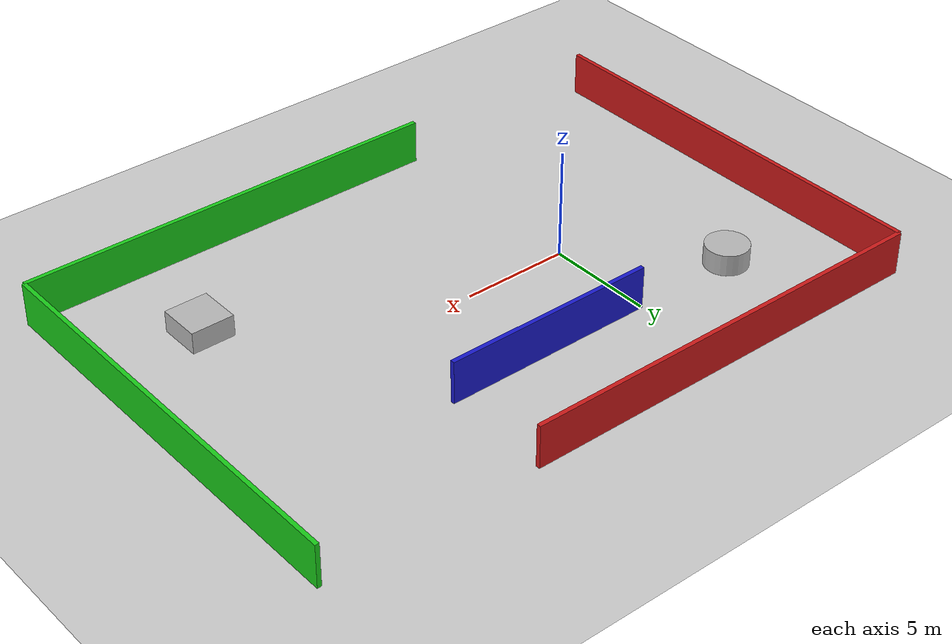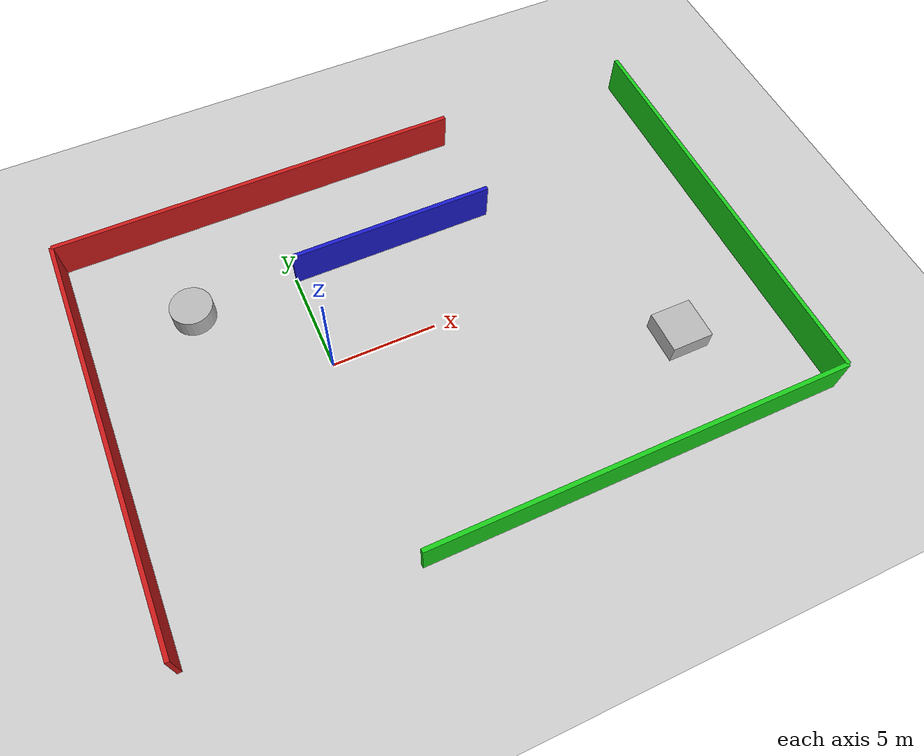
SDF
<?xml version="1.0" ?>
<sdf version="1.6">
  <world name="campus_world">
    <include>
      <uri>model://sun</uri>
    </include>
    <include>
      <uri>model://ground_plane</uri>
    </include>

    <!-- Zone A: Teaching Area -->
    <model name="zone_a_wall_1">
      <pose>0 10 1 0 0 0</pose>
      <link name="link">
        <collision name="collision">
          <geometry>
            <box><size>20 0.2 2</size></box>
          </geometry>
        </collision>
        <visual name="visual">
          <geometry>
            <box><size>20 0.2 2</size></box>
          </geometry>
          <material><ambient>0.8 0.1 0.1 1</ambient></material>
        </visual>
      </link>
      <static>true</static>
    </model>

    <model name="zone_a_wall_2">
      <pose>-10 0 1 0 0 1.570796</pose>
      <link name="link">
        <collision name="collision">
          <geometry>
            <box><size>20 0.2 2</size></box>
          </geometry>
        </collision>
        <visual name="visual">
          <geometry>
            <box><size>20 0.2 2</size></box>
          </geometry>
          <material><ambient>0.8 0.1 0.1 1</ambient></material>
        </visual>
      </link>
      <static>true</static>
    </model>

    <!-- Zone B: Dormitory Area -->
    <model name="zone_b_wall_1">
      <pose>20 0 1 0 0 1.570796</pose>
      <link name="link">
        <collision name="collision">
          <geometry>
            <box><size>20 0.2 2</size></box>
          </geometry>
        </collision>
        <visual name="visual">
          <geometry>
            <box><size>20 0.2 2</size></box>
          </geometry>
          <material><ambient>0.1 0.8 0.1 1</ambient></material>
        </visual>
      </link>
      <static>true</static>
    </model>

    <model name="zone_b_wall_2">
      <pose>10 -10 1 0 0 0</pose>
      <link name="link">
        <collision name="collision">
          <geometry>
            <box><size>20 0.2 2</size></box>
          </geometry>
        </collision>
        <visual name="visual">
          <geometry>
            <box><size>20 0.2 2</size></box>
          </geometry>
          <material><ambient>0.1 0.8 0.1 1</ambient></material>
        </visual>
      </link>
      <static>true</static>
    </model>

    <!-- Passageway Wall -->
    <model name="passageway_wall">
      <pose>5 5 1 0 0 0</pose>
      <link name="link">
        <collision name="collision">
          <geometry>
            <box><size>10 0.2 2</size></box>
          </geometry>
        </collision>
        <visual name="visual">
          <geometry>
            <box><size>10 0.2 2</size></box>
          </geometry>
          <material><ambient>0.1 0.1 0.8 1</ambient></material>
        </visual>
      </link>
      <static>true</static>
    </model>

    <!-- Obstacle in Zone A -->
    <model name="obstacle_a">
      <pose>-5 5 0.5 0 0 0</pose>
      <link name="link">
        <collision name="collision">
          <geometry>
            <cylinder><radius>1.0</radius><length>1.0</length></cylinder>
          </geometry>
        </collision>
        <visual name="visual">
          <geometry>
            <cylinder><radius>1.0</radius><length>1.0</length></cylinder>
          </geometry>
        </visual>
      </link>
      <static>true</static>
    </model>

    <!-- Obstacle in Zone B -->
    <model name="obstacle_b">
      <pose>15 -5 0.5 0 0 0</pose>
      <link name="link">
        <collision name="collision">
          <geometry>
            <box><size>2 2 1</size></box>
          </geometry>
        </collision>
        <visual name="visual">
          <geometry>
            <box><size>2 2 1</size></box>
          </geometry>
        </visual>
      </link>
      <static>true</static>
    </model>

  </world>
</sdf>
